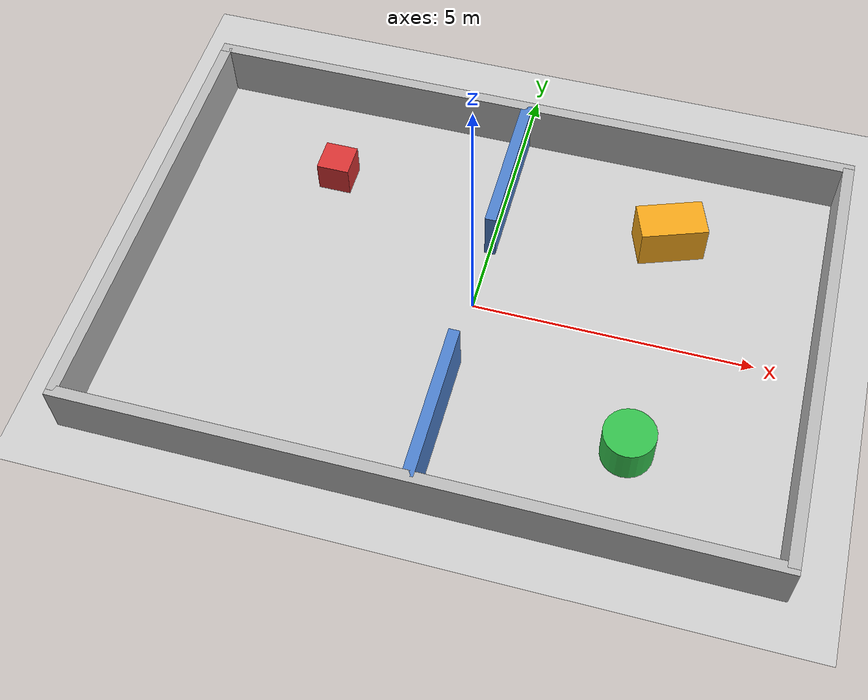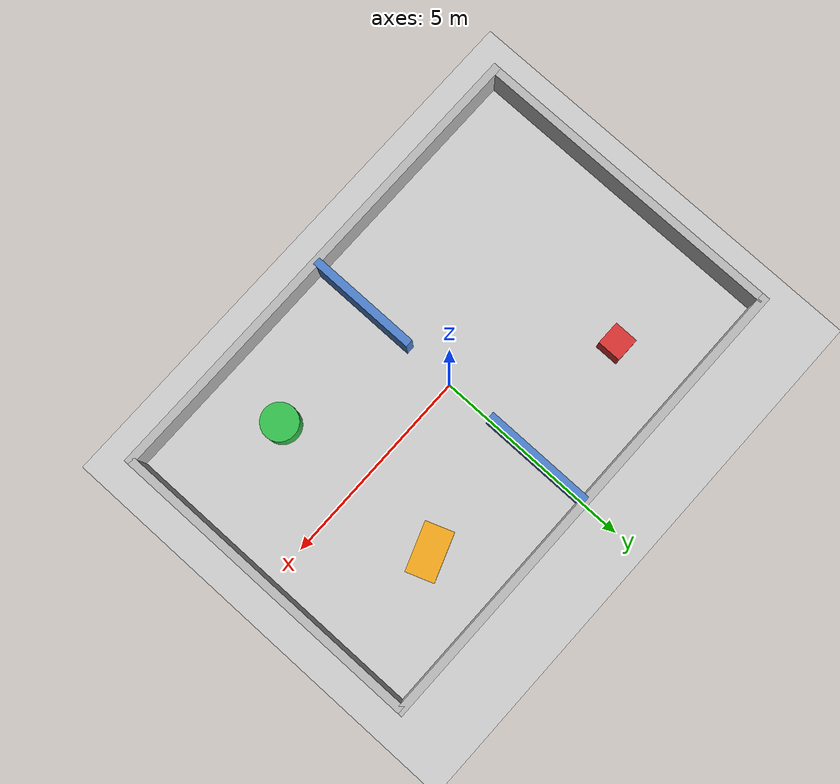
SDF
<?xml version="1.0"?>
<sdf version="1.6">
  <world name="assessment_world">
    <gravity>0 0 -9.8</gravity>

    <physics name="default_physics" type="ode">
      <max_step_size>0.001</max_step_size>
      <real_time_factor>1.0</real_time_factor>
      <real_time_update_rate>1000</real_time_update_rate>
    </physics>

    <include>
      <uri>model://ground_plane</uri>
    </include>

    <include>
      <uri>model://sun</uri>
    </include>

    <model name="outer_walls">
      <static>true</static>

      <link name="walls">
        <collision name="north_collision">
          <pose>0 4 0.5 0 0 0</pose>
          <geometry>
            <box>
              <size>12.2 0.2 1.0</size>
            </box>
          </geometry>
        </collision>

        <visual name="north_visual">
          <pose>0 4 0.5 0 0 0</pose>
          <geometry>
            <box>
              <size>12.2 0.2 1.0</size>
            </box>
          </geometry>
        </visual>

        <collision name="south_collision">
          <pose>0 -4 0.5 0 0 0</pose>
          <geometry>
            <box>
              <size>12.2 0.2 1.0</size>
            </box>
          </geometry>
        </collision>

        <visual name="south_visual">
          <pose>0 -4 0.5 0 0 0</pose>
          <geometry>
            <box>
              <size>12.2 0.2 1.0</size>
            </box>
          </geometry>
        </visual>

        <collision name="east_collision">
          <pose>6 0 0.5 0 0 0</pose>
          <geometry>
            <box>
              <size>0.2 8.0 1.0</size>
            </box>
          </geometry>
        </collision>

        <visual name="east_visual">
          <pose>6 0 0.5 0 0 0</pose>
          <geometry>
            <box>
              <size>0.2 8.0 1.0</size>
            </box>
          </geometry>
        </visual>

        <collision name="west_collision">
          <pose>-6 0 0.5 0 0 0</pose>
          <geometry>
            <box>
              <size>0.2 8.0 1.0</size>
            </box>
          </geometry>
        </collision>

        <visual name="west_visual">
          <pose>-6 0 0.5 0 0 0</pose>
          <geometry>
            <box>
              <size>0.2 8.0 1.0</size>
            </box>
          </geometry>
        </visual>
      </link>
    </model>
    <model name="partition_walls">
      <static>true</static>

      <link name="walls">
        <collision name="north_partition_collision">
          <pose>0 2.6 0.5 0 0 0</pose>
          <geometry>
            <box>
              <size>0.2 2.8 1.0</size>
            </box>
          </geometry>
        </collision>

        <visual name="north_partition_visual">
          <pose>0 2.6 0.5 0 0 0</pose>
          <geometry>
            <box>
              <size>0.2 2.8 1.0</size>
            </box>
          </geometry>
          <material>
            <ambient>0.3 0.5 0.8 1</ambient>
            <diffuse>0.3 0.5 0.8 1</diffuse>
          </material>
        </visual>

        <collision name="south_partition_collision">
          <pose>0 -2.6 0.5 0 0 0</pose>
          <geometry>
            <box>
              <size>0.2 2.8 1.0</size>
            </box>
          </geometry>
        </collision>

        <visual name="south_partition_visual">
          <pose>0 -2.6 0.5 0 0 0</pose>
          <geometry>
            <box>
              <size>0.2 2.8 1.0</size>
            </box>
          </geometry>
          <material>
            <ambient>0.3 0.5 0.8 1</ambient>
            <diffuse>0.3 0.5 0.8 1</diffuse>
          </material>
        </visual>
      </link>
    </model>
    <model name="obstacle_small_cube">
      <static>true</static>
      <pose>-3.2 2.2 0.3 0 0 0</pose>

      <link name="obstacle">
        <collision name="collision">
          <geometry>
            <box>
              <size>0.6 0.6 0.6</size>
            </box>
          </geometry>
        </collision>

        <visual name="visual">
          <geometry>
            <box>
              <size>0.6 0.6 0.6</size>
            </box>
          </geometry>
          <material>
            <ambient>0.85 0.2 0.2 1</ambient>
            <diffuse>0.85 0.2 0.2 1</diffuse>
          </material>
        </visual>
      </link>
    </model>
    <model name="obstacle_rectangular_box">
      <static>true</static>
      <pose>3.1 2.2 0.4 0 0 0.35</pose>

      <link name="obstacle">
        <collision name="collision">
          <geometry>
            <box>
              <size>1.2 0.7 0.8</size>
            </box>
          </geometry>
        </collision>

        <visual name="visual">
          <geometry>
            <box>
              <size>1.2 0.7 0.8</size>
            </box>
          </geometry>
          <material>
            <ambient>0.95 0.65 0.1 1</ambient>
            <diffuse>0.95 0.65 0.1 1</diffuse>
          </material>
        </visual>
      </link>
    </model>
    <model name="obstacle_cylinder">
      <static>true</static>
      <pose>3.2 -2.2 0.35 0 0 0</pose>

      <link name="obstacle">
        <collision name="collision">
          <geometry>
            <cylinder>
              <radius>0.45</radius>
              <length>0.7</length>
            </cylinder>
          </geometry>
        </collision>

        <visual name="visual">
          <geometry>
            <cylinder>
              <radius>0.45</radius>
              <length>0.7</length>
            </cylinder>
          </geometry>
          <material>
            <ambient>0.2 0.75 0.3 1</ambient>
            <diffuse>0.2 0.75 0.3 1</diffuse>
          </material>
        </visual>
      </link>
    </model>
  </world>
</sdf>
